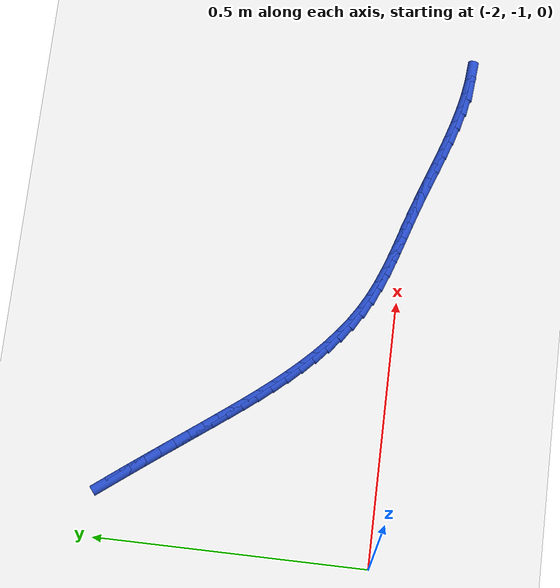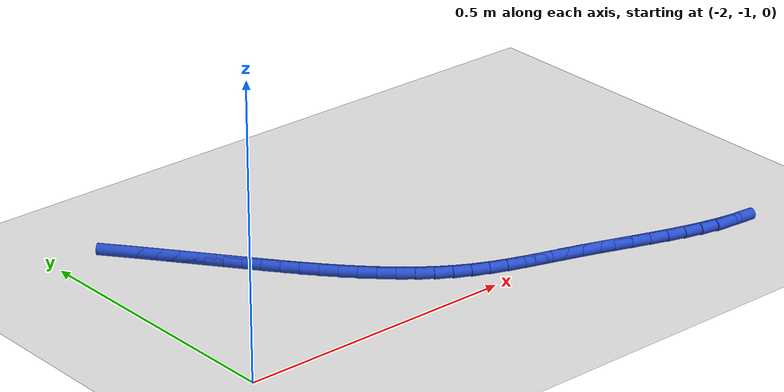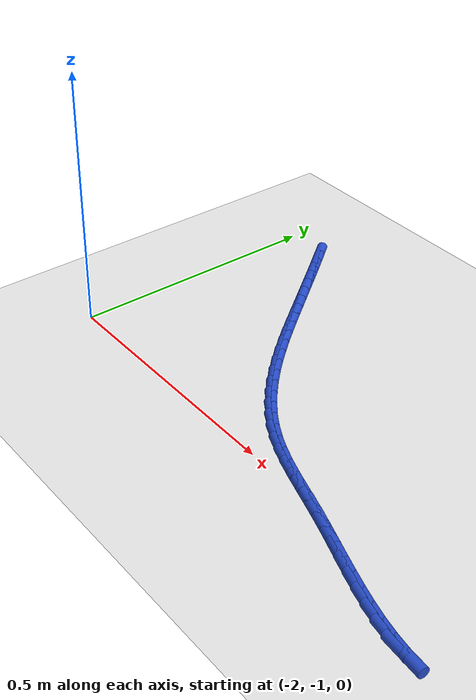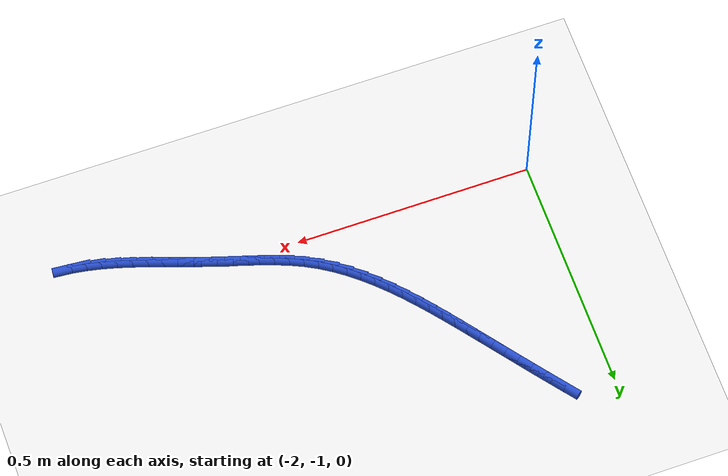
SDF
<sdf version="1.6">
 <world name="default">
  <model name="ground_plane">
   <static>1</static>
   <link name="link">
    <collision name="collision">
     <geometry><plane><normal>0 0 1</normal><size>100 100</size></plane></geometry>
     <surface><friction><ode><mu>100</mu><mu2>50</mu2></ode></friction></surface>
    </collision>
    <visual name="visual">
     <cast_shadows>0</cast_shadows>
     <geometry><plane><normal>0 0 1</normal><size>100 100</size></plane></geometry>
     <material>
      <script><uri>file://media/materials/scripts/gazebo.material</uri><name>Gazebo/WhiteGlow</name></script>
     </material>
    </visual>
   </link>
  </model>
  <model name="line">
   <link name="link_123">
    <pose>-1.8939344751102243 -0.5207865320651083 0.01 0 1.57 -0.91260359351049</pose>
    <collision name="collision">
     <geometry><cylinder><radius>0.01</radius><length>0.08</length></cylinder></geometry>
    </collision>
    <visual name="visual">
     <material>
      <script><name>Gazebo/Blue</name><uri>file://media/materials/scripts/gazebo.material</uri></script>
     </material>
     <geometry><cylinder><radius>0.01</radius><length>0.08</length></cylinder></geometry>
    </visual>
   </link>
   <link name="link_124">
    <pose>-1.8750331751927316 -0.5452316683670313 0.01 0 1.57 -0.9176114480457689</pose>
    <collision name="collision">
     <geometry><cylinder><radius>0.01</radius><length>0.08</length></cylinder></geometry>
    </collision>
    <visual name="visual">
     <material>
      <script><name>Gazebo/Blue</name><uri>file://media/materials/scripts/gazebo.material</uri></script>
     </material>
     <geometry><cylinder><radius>0.01</radius><length>0.08</length></cylinder></geometry>
    </visual>
   </link>
   <link name="link_125">
    <pose>-1.8563651945954047 -0.5696265381604413 0.01 0 1.57 -0.921379632408445</pose>
    <collision name="collision">
     <geometry><cylinder><radius>0.01</radius><length>0.08</length></cylinder></geometry>
    </collision>
    <visual name="visual">
     <material>
      <script><name>Gazebo/Blue</name><uri>file://media/materials/scripts/gazebo.material</uri></script>
     </material>
     <geometry><cylinder><radius>0.01</radius><length>0.08</length></cylinder></geometry>
    </visual>
   </link>
   <link name="link_126">
    <pose>-1.837846140180676 -0.5940166801763426 0.01 0 1.57 -0.9238643373923343</pose>
    <collision name="collision">
     <geometry><cylinder><radius>0.01</radius><length>0.08</length></cylinder></geometry>
    </collision>
    <visual name="visual">
     <material>
      <script><name>Gazebo/Blue</name><uri>file://media/materials/scripts/gazebo.material</uri></script>
     </material>
     <geometry><cylinder><radius>0.01</radius><length>0.08</length></cylinder></geometry>
    </visual>
   </link>
   <link name="link_127">
    <pose>-1.8193916188109764 -0.6184476331457409 0.01 0 1.57 -0.9250435273350367</pose>
    <collision name="collision">
     <geometry><cylinder><radius>0.01</radius><length>0.08</length></cylinder></geometry>
    </collision>
    <visual name="visual">
     <material>
      <script><name>Gazebo/Blue</name><uri>file://media/materials/scripts/gazebo.material</uri></script>
     </material>
     <geometry><cylinder><radius>0.01</radius><length>0.08</length></cylinder></geometry>
    </visual>
   </link>
   <link name="link_128">
    <pose>-1.800917237348737 -0.6429649357996413 0.01 0 1.57 -0.9249174656209691</pose>
    <collision name="collision">
     <geometry><cylinder><radius>0.01</radius><length>0.08</length></cylinder></geometry>
    </collision>
    <visual name="visual">
     <material>
      <script><name>Gazebo/Blue</name><uri>file://media/materials/scripts/gazebo.material</uri></script>
     </material>
     <geometry><cylinder><radius>0.01</radius><length>0.08</length></cylinder></geometry>
    </visual>
   </link>
   <link name="link_129">
    <pose>-1.7823386026563899 -0.6676141268690496 0.01 0 1.57 -0.9235080185802691</pose>
    <collision name="collision">
     <geometry><cylinder><radius>0.01</radius><length>0.08</length></cylinder></geometry>
    </collision>
    <visual name="visual">
     <material>
      <script><name>Gazebo/Blue</name><uri>file://media/materials/scripts/gazebo.material</uri></script>
     </material>
     <geometry><cylinder><radius>0.01</radius><length>0.08</length></cylinder></geometry>
    </visual>
   </link>
   <link name="link_130">
    <pose>-1.7635713230246772 -0.692440725634292 0.01 0 1.57 -0.9199894959333905</pose>
    <collision name="collision">
     <geometry><cylinder><radius>0.01</radius><length>0.08</length></cylinder></geometry>
    </collision>
    <visual name="visual">
     <material>
      <script><name>Gazebo/Blue</name><uri>file://media/materials/scripts/gazebo.material</uri></script>
     </material>
     <geometry><cylinder><radius>0.01</radius><length>0.08</length></cylinder></geometry>
    </visual>
   </link>
   <link name="link_131">
    <pose>-1.7445346731795155 -0.7174403220107088 0.01 0 1.57 -0.9116812616531981</pose>
    <collision name="collision">
     <geometry><cylinder><radius>0.01</radius><length>0.08</length></cylinder></geometry>
    </collision>
    <visual name="visual">
     <material>
      <script><name>Gazebo/Blue</name><uri>file://media/materials/scripts/gazebo.material</uri></script>
     </material>
     <geometry><cylinder><radius>0.01</radius><length>0.08</length></cylinder></geometry>
    </visual>
   </link>
   <link name="link_132">
    <pose>-1.7251595243445301 -0.7424505852797654 0.01 0 1.57 -0.8980595346316488</pose>
    <collision name="collision">
     <geometry><cylinder><radius>0.01</radius><length>0.08</length></cylinder></geometry>
    </collision>
    <visual name="visual">
     <material>
      <script><name>Gazebo/Blue</name><uri>file://media/materials/scripts/gazebo.material</uri></script>
     </material>
     <geometry><cylinder><radius>0.01</radius><length>0.08</length></cylinder></geometry>
    </visual>
   </link>
   <link name="link_133">
    <pose>-1.7053790349485694 -0.7672780376553033 0.01 0 1.57 -0.8790414199660356</pose>
    <collision name="collision">
     <geometry><cylinder><radius>0.01</radius><length>0.08</length></cylinder></geometry>
    </collision>
    <visual name="visual">
     <material>
      <script><name>Gazebo/Blue</name><uri>file://media/materials/scripts/gazebo.material</uri></script>
     </material>
     <geometry><cylinder><radius>0.01</radius><length>0.08</length></cylinder></geometry>
    </visual>
   </link>
   <link name="link_134">
    <pose>-1.6851263634204792 -0.7917292013511656 0.01 0 1.57 -0.8544506834385296</pose>
    <collision name="collision">
     <geometry><cylinder><radius>0.01</radius><length>0.08</length></cylinder></geometry>
    </collision>
    <visual name="visual">
     <material>
      <script><name>Gazebo/Blue</name><uri>file://media/materials/scripts/gazebo.material</uri></script>
     </material>
     <geometry><cylinder><radius>0.01</radius><length>0.08</length></cylinder></geometry>
    </visual>
   </link>
   <link name="link_135">
    <pose>-1.6643346681891078 -0.815610598581195 0.01 0 1.57 -0.8240302843202789</pose>
    <collision name="collision">
     <geometry><cylinder><radius>0.01</radius><length>0.08</length></cylinder></geometry>
    </collision>
    <visual name="visual">
     <material>
      <script><name>Gazebo/Blue</name><uri>file://media/materials/scripts/gazebo.material</uri></script>
     </material>
     <geometry><cylinder><radius>0.01</radius><length>0.08</length></cylinder></geometry>
    </visual>
   </link>
   <link name="link_136">
    <pose>-1.6429371076833024 -0.8387287515592342 0.01 0 1.57 -0.7874592070140549</pose>
    <collision name="collision">
     <geometry><cylinder><radius>0.01</radius><length>0.08</length></cylinder></geometry>
    </collision>
    <visual name="visual">
     <material>
      <script><name>Gazebo/Blue</name><uri>file://media/materials/scripts/gazebo.material</uri></script>
     </material>
     <geometry><cylinder><radius>0.01</radius><length>0.08</length></cylinder></geometry>
    </visual>
   </link>
   <link name="link_137">
    <pose>-1.6208668403319102 -0.860890182499126 0.01 0 1.57 -0.7443773335457815</pose>
    <collision name="collision">
     <geometry><cylinder><radius>0.01</radius><length>0.08</length></cylinder></geometry>
    </collision>
    <visual name="visual">
     <material>
      <script><name>Gazebo/Blue</name><uri>file://media/materials/scripts/gazebo.material</uri></script>
     </material>
     <geometry><cylinder><radius>0.01</radius><length>0.08</length></cylinder></geometry>
    </visual>
   </link>
   <link name="link_138">
    <pose>-1.598057024563778 -0.8819014136147132 0.01 0 1.57 -0.6944228732504255</pose>
    <collision name="collision">
     <geometry><cylinder><radius>0.01</radius><length>0.08</length></cylinder></geometry>
    </collision>
    <visual name="visual">
     <material>
      <script><name>Gazebo/Blue</name><uri>file://media/materials/scripts/gazebo.material</uri></script>
     </material>
     <geometry><cylinder><radius>0.01</radius><length>0.08</length></cylinder></geometry>
    </visual>
   </link>
   <link name="link_139">
    <pose>-1.5744408188077543 -0.9015689671198378 0.01 0 1.57 -0.6372870366565707</pose>
    <collision name="collision">
     <geometry><cylinder><radius>0.01</radius><length>0.08</length></cylinder></geometry>
    </collision>
    <visual name="visual">
     <material>
      <script><name>Gazebo/Blue</name><uri>file://media/materials/scripts/gazebo.material</uri></script>
     </material>
     <geometry><cylinder><radius>0.01</radius><length>0.08</length></cylinder></geometry>
    </visual>
   </link>
   <link name="link_140">
    <pose>-1.5499513814926857 -0.9196993652283426 0.01 0 1.57 -0.5727892241259414</pose>
    <collision name="collision">
     <geometry><cylinder><radius>0.01</radius><length>0.08</length></cylinder></geometry>
    </collision>
    <visual name="visual">
     <material>
      <script><name>Gazebo/Blue</name><uri>file://media/materials/scripts/gazebo.material</uri></script>
     </material>
     <geometry><cylinder><radius>0.01</radius><length>0.08</length></cylinder></geometry>
    </visual>
   </link>
   <link name="link_141">
    <pose>-1.5245218710474193 -0.9360991301540705 0.01 0 1.57 -0.5011986916519702</pose>
    <collision name="collision">
     <geometry><cylinder><radius>0.01</radius><length>0.08</length></cylinder></geometry>
    </collision>
    <visual name="visual">
     <material>
      <script><name>Gazebo/Blue</name><uri>file://media/materials/scripts/gazebo.material</uri></script>
     </material>
     <geometry><cylinder><radius>0.01</radius><length>0.08</length></cylinder></geometry>
    </visual>
   </link>
   <link name="link_142">
    <pose>-1.4980875678294356 -0.9505814261235928 0.01 0 1.57 -0.431754282849518</pose>
    <collision name="collision">
     <geometry><cylinder><radius>0.01</radius><length>0.08</length></cylinder></geometry>
    </collision>
    <visual name="visual">
     <material>
      <script><name>Gazebo/Blue</name><uri>file://media/materials/scripts/gazebo.material</uri></script>
     </material>
     <geometry><cylinder><radius>0.01</radius><length>0.08</length></cylinder></geometry>
    </visual>
   </link>
   <link name="link_143">
    <pose>-1.4706657037827595 -0.9632159403551445 0.01 0 1.57 -0.37666842760096286</pose>
    <collision name="collision">
     <geometry><cylinder><radius>0.01</radius><length>0.08</length></cylinder></geometry>
    </collision>
    <visual name="visual">
     <material>
      <script><name>Gazebo/Blue</name><uri>file://media/materials/scripts/gazebo.material</uri></script>
     </material>
     <geometry><cylinder><radius>0.01</radius><length>0.08</length></cylinder></geometry>
    </visual>
   </link>
   <link name="link_144">
    <pose>-1.4423796584374402 -0.974404620825695 0.01 0 1.57 -0.33698110632589884</pose>
    <collision name="collision">
     <geometry><cylinder><radius>0.01</radius><length>0.08</length></cylinder></geometry>
    </collision>
    <visual name="visual">
     <material>
      <script><name>Gazebo/Blue</name><uri>file://media/materials/scripts/gazebo.material</uri></script>
     </material>
     <geometry><cylinder><radius>0.01</radius><length>0.08</length></cylinder></geometry>
    </visual>
   </link>
   <link name="link_145">
    <pose>-1.4133598742054254 -0.9845715235844344 0.01 0 1.57 -0.31245021219827146</pose>
    <collision name="collision">
     <geometry><cylinder><radius>0.01</radius><length>0.08</length></cylinder></geometry>
    </collision>
    <visual name="visual">
     <material>
      <script><name>Gazebo/Blue</name><uri>file://media/materials/scripts/gazebo.material</uri></script>
     </material>
     <geometry><cylinder><radius>0.01</radius><length>0.08</length></cylinder></geometry>
    </visual>
   </link>
   <link name="link_146">
    <pose>-1.3837367934986609 -0.9941407046805496 0.01 0 1.57 -0.3025983546006582</pose>
    <collision name="collision">
     <geometry><cylinder><radius>0.01</radius><length>0.08</length></cylinder></geometry>
    </collision>
    <visual name="visual">
     <material>
      <script><name>Gazebo/Blue</name><uri>file://media/materials/scripts/gazebo.material</uri></script>
     </material>
     <geometry><cylinder><radius>0.01</radius><length>0.08</length></cylinder></geometry>
    </visual>
   </link>
   <link name="link_147">
    <pose>-1.3536408587290927 -1.00353622016323 0.01 0 1.57 -0.3068881918303386</pose>
    <collision name="collision">
     <geometry><cylinder><radius>0.01</radius><length>0.08</length></cylinder></geometry>
    </collision>
    <visual name="visual">
     <material>
      <script><name>Gazebo/Blue</name><uri>file://media/materials/scripts/gazebo.material</uri></script>
     </material>
     <geometry><cylinder><radius>0.01</radius><length>0.08</length></cylinder></geometry>
    </visual>
   </link>
   <link name="link_148">
    <pose>-1.323202512308667 -1.013182126081664 0.01 0 1.57 -0.3228190570973961</pose>
    <collision name="collision">
     <geometry><cylinder><radius>0.01</radius><length>0.08</length></cylinder></geometry>
    </collision>
    <visual name="visual">
     <material>
      <script><name>Gazebo/Blue</name><uri>file://media/materials/scripts/gazebo.material</uri></script>
     </material>
     <geometry><cylinder><radius>0.01</radius><length>0.08</length></cylinder></geometry>
    </visual>
   </link>
   <link name="link_149">
    <pose>-1.2925460659122001 -1.0234373506351566 0.01 0 1.57 -0.3356460374757862</pose>
    <collision name="collision">
     <geometry><cylinder><radius>0.01</radius><length>0.08</length></cylinder></geometry>
    </collision>
    <visual name="visual">
     <material>
      <script><name>Gazebo/Blue</name><uri>file://media/materials/scripts/gazebo.material</uri></script>
     </material>
     <geometry><cylinder><radius>0.01</radius><length>0.08</length></cylinder></geometry>
    </visual>
   </link>
   <link name="link_150">
    <pose>-1.2617505900122727 -1.03418021713569 0.01 0 1.57 -0.33918916271046984</pose>
    <collision name="collision">
     <geometry><cylinder><radius>0.01</radius><length>0.08</length></cylinder></geometry>
    </collision>
    <visual name="visual">
     <material>
      <script><name>Gazebo/Blue</name><uri>file://media/materials/scripts/gazebo.material</uri></script>
     </material>
     <geometry><cylinder><radius>0.01</radius><length>0.08</length></cylinder></geometry>
    </visual>
   </link>
   <link name="link_151">
    <pose>-1.2308749047220928 -1.0450739259276156 0.01 0 1.57 -0.333578625356878</pose>
    <collision name="collision">
     <geometry><cylinder><radius>0.01</radius><length>0.08</length></cylinder></geometry>
    </collision>
    <visual name="visual">
     <material>
      <script><name>Gazebo/Blue</name><uri>file://media/materials/scripts/gazebo.material</uri></script>
     </material>
     <geometry><cylinder><radius>0.01</radius><length>0.08</length></cylinder></geometry>
    </visual>
   </link>
   <link name="link_152">
    <pose>-1.199977735208973 -1.055780668729055 0.01 0 1.57 -0.31869472875007177</pose>
    <collision name="collision">
     <geometry><cylinder><radius>0.01</radius><length>0.08</length></cylinder></geometry>
    </collision>
    <visual name="visual">
     <material>
      <script><name>Gazebo/Blue</name><uri>file://media/materials/scripts/gazebo.material</uri></script>
     </material>
     <geometry><cylinder><radius>0.01</radius><length>0.08</length></cylinder></geometry>
    </visual>
   </link>
   <link name="link_153">
    <pose>-1.1691178066402226 -1.0659626372581266 0.01 0 1.57 -0.2941444469364992</pose>
    <collision name="collision">
     <geometry><cylinder><radius>0.01</radius><length>0.08</length></cylinder></geometry>
    </collision>
    <visual name="visual">
     <material>
      <script><name>Gazebo/Blue</name><uri>file://media/materials/scripts/gazebo.material</uri></script>
     </material>
     <geometry><cylinder><radius>0.01</radius><length>0.08</length></cylinder></geometry>
    </visual>
   </link>
   <link name="link_154">
    <pose>-1.1383538441831504 -1.075282023232951 0.01 0 1.57 -0.25927583095208595</pose>
    <collision name="collision">
     <geometry><cylinder><radius>0.01</radius><length>0.08</length></cylinder></geometry>
    </collision>
    <visual name="visual">
     <material>
      <script><name>Gazebo/Blue</name><uri>file://media/materials/scripts/gazebo.material</uri></script>
     </material>
     <geometry><cylinder><radius>0.01</radius><length>0.08</length></cylinder></geometry>
    </visual>
   </link>
   <link name="link_155">
    <pose>-1.1077445730050668 -1.0834010183716478 0.01 0 1.57 -0.21321238068721282</pose>
    <collision name="collision">
     <geometry><cylinder><radius>0.01</radius><length>0.08</length></cylinder></geometry>
    </collision>
    <visual name="visual">
     <material>
      <script><name>Gazebo/Blue</name><uri>file://media/materials/scripts/gazebo.material</uri></script>
     </material>
     <geometry><cylinder><radius>0.01</radius><length>0.08</length></cylinder></geometry>
    </visual>
   </link>
   <link name="link_156">
    <pose>-1.077348718273282 -1.0899818143923374 0.01 0 1.57 -0.15493058408547322</pose>
    <collision name="collision">
     <geometry><cylinder><radius>0.01</radius><length>0.08</length></cylinder></geometry>
    </collision>
    <visual name="visual">
     <material>
      <script><name>Gazebo/Blue</name><uri>file://media/materials/scripts/gazebo.material</uri></script>
     </material>
     <geometry><cylinder><radius>0.01</radius><length>0.08</length></cylinder></geometry>
    </visual>
   </link>
   <link name="link_157">
    <pose>-1.047225005155105 -1.0946866030131397 0.01 0 1.57 -0.08341575277916546</pose>
    <collision name="collision">
     <geometry><cylinder><radius>0.01</radius><length>0.08</length></cylinder></geometry>
    </collision>
    <visual name="visual">
     <material>
      <script><name>Gazebo/Blue</name><uri>file://media/materials/scripts/gazebo.material</uri></script>
     </material>
     <geometry><cylinder><radius>0.01</radius><length>0.08</length></cylinder></geometry>
    </visual>
   </link>
  </model>
 </world>
</sdf>
